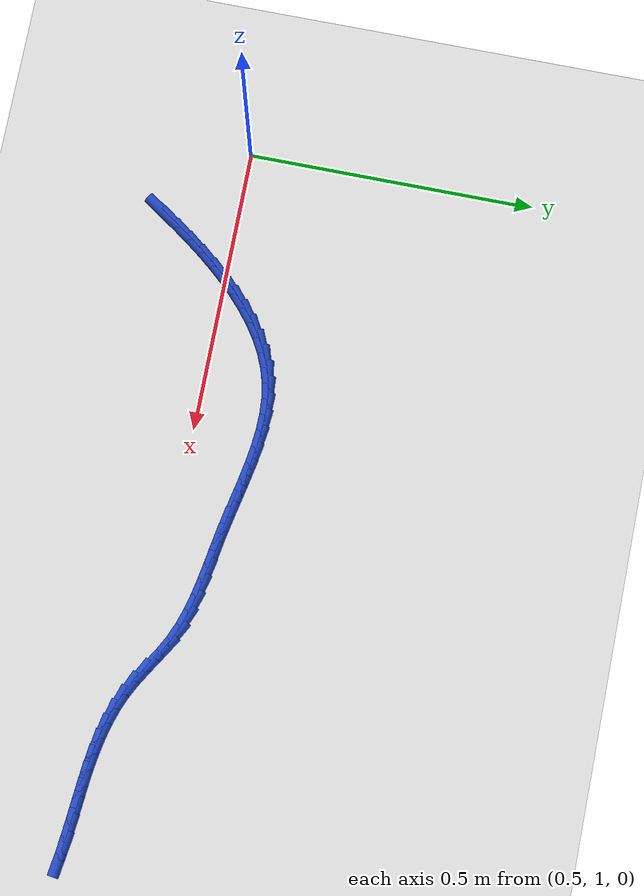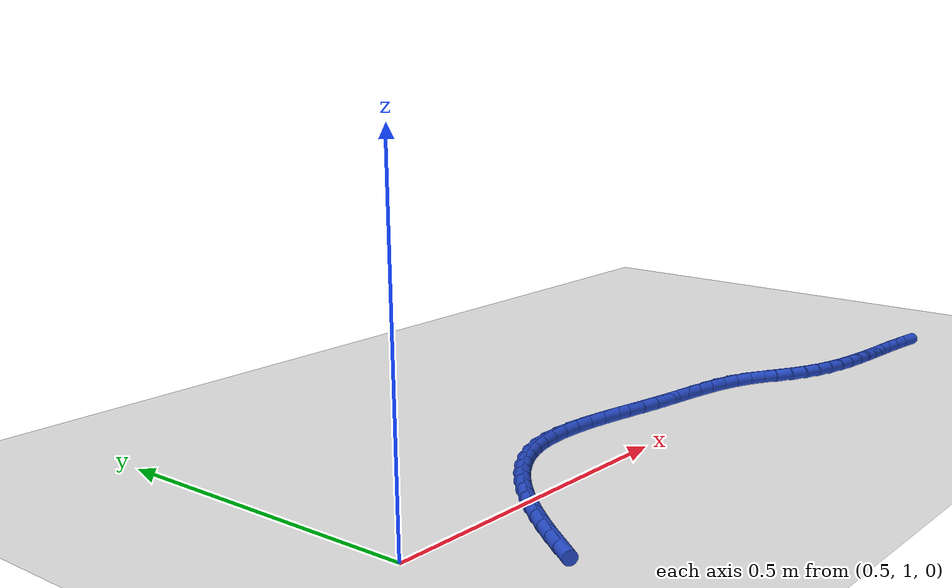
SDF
<sdf version="1.6">
 <world name="default">
  <model name="ground_plane">
   <static>1</static>
   <link name="link">
    <collision name="collision">
     <geometry><plane><normal>0 0 1</normal><size>100 100</size></plane></geometry>
     <surface><friction><ode><mu>100</mu><mu2>50</mu2></ode></friction></surface>
    </collision>
    <visual name="visual">
     <cast_shadows>0</cast_shadows>
     <geometry><plane><normal>0 0 1</normal><size>100 100</size></plane></geometry>
     <material>
      <script><uri>file://media/materials/scripts/gazebo.material</uri><name>Gazebo/WhiteGlow</name></script>
     </material>
    </visual>
   </link>
  </model>
  <model name="line">
   <link name="link_39">
    <pose>0.6345118933357509 0.8747605271081191 0.01 0 1.57 0.9742703240293497</pose>
    <collision name="collision">
     <geometry><cylinder><radius>0.01</radius><length>0.08</length></cylinder></geometry>
    </collision>
    <visual name="visual">
     <material>
      <script><name>Gazebo/Blue</name><uri>file://media/materials/scripts/gazebo.material</uri></script>
     </material>
     <geometry><cylinder><radius>0.01</radius><length>0.08</length></cylinder></geometry>
    </visual>
   </link>
   <link name="link_40">
    <pose>0.6522768348717717 0.9009220325243141 0.01 0 1.57 0.950379968052218</pose>
    <collision name="collision">
     <geometry><cylinder><radius>0.01</radius><length>0.08</length></cylinder></geometry>
    </collision>
    <visual name="visual">
     <material>
      <script><name>Gazebo/Blue</name><uri>file://media/materials/scripts/gazebo.material</uri></script>
     </material>
     <geometry><cylinder><radius>0.01</radius><length>0.08</length></cylinder></geometry>
    </visual>
   </link>
   <link name="link_41">
    <pose>0.6707701155462291 0.9268034929686579 0.01 0 1.57 0.9212251369995517</pose>
    <collision name="collision">
     <geometry><cylinder><radius>0.01</radius><length>0.08</length></cylinder></geometry>
    </collision>
    <visual name="visual">
     <material>
      <script><name>Gazebo/Blue</name><uri>file://media/materials/scripts/gazebo.material</uri></script>
     </material>
     <geometry><cylinder><radius>0.01</radius><length>0.08</length></cylinder></geometry>
    </visual>
   </link>
   <link name="link_42">
    <pose>0.6900045003930402 0.952127621854173 0.01 0 1.57 0.886257171846534</pose>
    <collision name="collision">
     <geometry><cylinder><radius>0.01</radius><length>0.08</length></cylinder></geometry>
    </collision>
    <visual name="visual">
     <material>
      <script><name>Gazebo/Blue</name><uri>file://media/materials/scripts/gazebo.material</uri></script>
     </material>
     <geometry><cylinder><radius>0.01</radius><length>0.08</length></cylinder></geometry>
    </visual>
   </link>
   <link name="link_43">
    <pose>0.709992754446123 0.9766171325938823 0.01 0 1.57 0.8447566182954042</pose>
    <collision name="collision">
     <geometry><cylinder><radius>0.01</radius><length>0.08</length></cylinder></geometry>
    </collision>
    <visual name="visual">
     <material>
      <script><name>Gazebo/Blue</name><uri>file://media/materials/scripts/gazebo.material</uri></script>
     </material>
     <geometry><cylinder><radius>0.01</radius><length>0.08</length></cylinder></geometry>
    </visual>
   </link>
   <link name="link_44">
    <pose>0.7307476427393947 0.9999947386008087 0.01 0 1.57 0.7958320431084995</pose>
    <collision name="collision">
     <geometry><cylinder><radius>0.01</radius><length>0.08</length></cylinder></geometry>
    </collision>
    <visual name="visual">
     <material>
      <script><name>Gazebo/Blue</name><uri>file://media/materials/scripts/gazebo.material</uri></script>
     </material>
     <geometry><cylinder><radius>0.01</radius><length>0.08</length></cylinder></geometry>
    </visual>
   </link>
   <link name="link_45">
    <pose>0.7522819303067732 1.0219831532879748 0.01 0 1.57 0.7384317700576108</pose>
    <collision name="collision">
     <geometry><cylinder><radius>0.01</radius><length>0.08</length></cylinder></geometry>
    </collision>
    <visual name="visual">
     <material>
      <script><name>Gazebo/Blue</name><uri>file://media/materials/scripts/gazebo.material</uri></script>
     </material>
     <geometry><cylinder><radius>0.01</radius><length>0.08</length></cylinder></geometry>
    </visual>
   </link>
   <link name="link_46">
    <pose>0.774608382182176 1.0423050900684043 0.01 0 1.57 0.6713859577516702</pose>
    <collision name="collision">
     <geometry><cylinder><radius>0.01</radius><length>0.08</length></cylinder></geometry>
    </collision>
    <visual name="visual">
     <material>
      <script><name>Gazebo/Blue</name><uri>file://media/materials/scripts/gazebo.material</uri></script>
     </material>
     <geometry><cylinder><radius>0.01</radius><length>0.08</length></cylinder></geometry>
    </visual>
   </link>
   <link name="link_47">
    <pose>0.7977397633995207 1.0606832623551194 0.01 0 1.57 0.5935056619220203</pose>
    <collision name="collision">
     <geometry><cylinder><radius>0.01</radius><length>0.08</length></cylinder></geometry>
    </collision>
    <visual name="visual">
     <material>
      <script><name>Gazebo/Blue</name><uri>file://media/materials/scripts/gazebo.material</uri></script>
     </material>
     <geometry><cylinder><radius>0.01</radius><length>0.08</length></cylinder></geometry>
    </visual>
   </link>
   <link name="link_48">
    <pose>0.8216888389927248 1.0768403835611435 0.01 0 1.57 0.5037734537976285</pose>
    <collision name="collision">
     <geometry><cylinder><radius>0.01</radius><length>0.08</length></cylinder></geometry>
    </collision>
    <visual name="visual">
     <material>
      <script><name>Gazebo/Blue</name><uri>file://media/materials/scripts/gazebo.material</uri></script>
     </material>
     <geometry><cylinder><radius>0.01</radius><length>0.08</length></cylinder></geometry>
    </visual>
   </link>
   <link name="link_49">
    <pose>0.8464683739957058 1.0904991670994986 0.01 0 1.57 0.40165531224368434</pose>
    <collision name="collision">
     <geometry><cylinder><radius>0.01</radius><length>0.08</length></cylinder></geometry>
    </collision>
    <visual name="visual">
     <material>
      <script><name>Gazebo/Blue</name><uri>file://media/materials/scripts/gazebo.material</uri></script>
     </material>
     <geometry><cylinder><radius>0.01</radius><length>0.08</length></cylinder></geometry>
    </visual>
   </link>
   <link name="link_50">
    <pose>0.8720911334423816 1.1013823263832083 0.01 0 1.57 0.28752393944200116</pose>
    <collision name="collision">
     <geometry><cylinder><radius>0.01</radius><length>0.08</length></cylinder></geometry>
    </collision>
    <visual name="visual">
     <material>
      <script><name>Gazebo/Blue</name><uri>file://media/materials/scripts/gazebo.material</uri></script>
     </material>
     <geometry><cylinder><radius>0.01</radius><length>0.08</length></cylinder></geometry>
    </visual>
   </link>
   <link name="link_51">
    <pose>0.8985698823666695 1.1092125748252952 0.01 0 1.57 0.16746332577175901</pose>
    <collision name="collision">
     <geometry><cylinder><radius>0.01</radius><length>0.08</length></cylinder></geometry>
    </collision>
    <visual name="visual">
     <material>
      <script><name>Gazebo/Blue</name><uri>file://media/materials/scripts/gazebo.material</uri></script>
     </material>
     <geometry><cylinder><radius>0.01</radius><length>0.08</length></cylinder></geometry>
    </visual>
   </link>
   <link name="link_52">
    <pose>0.9258967491045006 1.113832086909286 0.01 0 1.57 0.06163201362966509</pose>
    <collision name="collision">
     <geometry><cylinder><radius>0.01</radius><length>0.08</length></cylinder></geometry>
    </collision>
    <visual name="visual">
     <material>
      <script><name>Gazebo/Blue</name><uri>file://media/materials/scripts/gazebo.material</uri></script>
     </material>
     <geometry><cylinder><radius>0.01</radius><length>0.08</length></cylinder></geometry>
    </visual>
   </link>
   <link name="link_53">
    <pose>0.9539805787087852 1.1155651447771653 0.01 0 1.57 -0.02462243923433785</pose>
    <collision name="collision">
     <geometry><cylinder><radius>0.01</radius><length>0.08</length></cylinder></geometry>
    </collision>
    <visual name="visual">
     <material>
      <script><name>Gazebo/Blue</name><uri>file://media/materials/scripts/gazebo.material</uri></script>
     </material>
     <geometry><cylinder><radius>0.01</radius><length>0.08</length></cylinder></geometry>
    </visual>
   </link>
   <link name="link_54">
    <pose>0.9827092096491266 1.1148576328219746 0.01 0 1.57 -0.09208605516539609</pose>
    <collision name="collision">
     <geometry><cylinder><radius>0.01</radius><length>0.08</length></cylinder></geometry>
    </collision>
    <visual name="visual">
     <material>
      <script><name>Gazebo/Blue</name><uri>file://media/materials/scripts/gazebo.material</uri></script>
     </material>
     <geometry><cylinder><radius>0.01</radius><length>0.08</length></cylinder></geometry>
    </visual>
   </link>
   <link name="link_55">
    <pose>1.0119704803945873 1.1121554354398833 0.01 0 1.57 -0.1422519207330489</pose>
    <collision name="collision">
     <geometry><cylinder><radius>0.01</radius><length>0.08</length></cylinder></geometry>
    </collision>
    <visual name="visual">
     <material>
      <script><name>Gazebo/Blue</name><uri>file://media/materials/scripts/gazebo.material</uri></script>
     </material>
     <geometry><cylinder><radius>0.01</radius><length>0.08</length></cylinder></geometry>
    </visual>
   </link>
   <link name="link_56">
    <pose>1.04165222941423 1.1079044370270599 0.01 0 1.57 -0.1766618763921665</pose>
    <collision name="collision">
     <geometry><cylinder><radius>0.01</radius><length>0.08</length></cylinder></geometry>
    </collision>
    <visual name="visual">
     <material>
      <script><name>Gazebo/Blue</name><uri>file://media/materials/scripts/gazebo.material</uri></script>
     </material>
     <geometry><cylinder><radius>0.01</radius><length>0.08</length></cylinder></geometry>
    </visual>
   </link>
   <link name="link_57">
    <pose>1.0716422951771174 1.102550521979675 0.01 0 1.57 -0.19655776963537325</pose>
    <collision name="collision">
     <geometry><cylinder><radius>0.01</radius><length>0.08</length></cylinder></geometry>
    </collision>
    <visual name="visual">
     <material>
      <script><name>Gazebo/Blue</name><uri>file://media/materials/scripts/gazebo.material</uri></script>
     </material>
     <geometry><cylinder><radius>0.01</radius><length>0.08</length></cylinder></geometry>
    </visual>
   </link>
   <link name="link_58">
    <pose>1.101828516152312 1.0965395746938977 0.01 0 1.57 -0.2027280223977942</pose>
    <collision name="collision">
     <geometry><cylinder><radius>0.01</radius><length>0.08</length></cylinder></geometry>
    </collision>
    <visual name="visual">
     <material>
      <script><name>Gazebo/Blue</name><uri>file://media/materials/scripts/gazebo.material</uri></script>
     </material>
     <geometry><cylinder><radius>0.01</radius><length>0.08</length></cylinder></geometry>
    </visual>
   </link>
   <link name="link_59">
    <pose>1.1320987308088764 1.090317479565897 0.01 0 1.57 -0.1954537136168871</pose>
    <collision name="collision">
     <geometry><cylinder><radius>0.01</radius><length>0.08</length></cylinder></geometry>
    </collision>
    <visual name="visual">
     <material>
      <script><name>Gazebo/Blue</name><uri>file://media/materials/scripts/gazebo.material</uri></script>
     </material>
     <geometry><cylinder><radius>0.01</radius><length>0.08</length></cylinder></geometry>
    </visual>
   </link>
   <link name="link_60">
    <pose>1.1623407776158725 1.0843301209918426 0.01 0 1.57 -0.17618737623844744</pose>
    <collision name="collision">
     <geometry><cylinder><radius>0.01</radius><length>0.08</length></cylinder></geometry>
    </collision>
    <visual name="visual">
     <material>
      <script><name>Gazebo/Blue</name><uri>file://media/materials/scripts/gazebo.material</uri></script>
     </material>
     <geometry><cylinder><radius>0.01</radius><length>0.08</length></cylinder></geometry>
    </visual>
   </link>
   <link name="link_61">
    <pose>1.1924422514113204 1.0789710541708346 0.01 0 1.57 -0.16349710700885836</pose>
    <collision name="collision">
     <geometry><cylinder><radius>0.01</radius><length>0.08</length></cylinder></geometry>
    </collision>
    <visual name="visual">
     <material>
      <script><name>Gazebo/Blue</name><uri>file://media/materials/scripts/gazebo.material</uri></script>
     </material>
     <geometry><cylinder><radius>0.01</radius><length>0.08</length></cylinder></geometry>
    </visual>
   </link>
   <link name="link_62">
    <pose>1.2222880167843102 1.0740474076623578 0.01 0 1.57 -0.16967087327609182</pose>
    <collision name="collision">
     <geometry><cylinder><radius>0.01</radius><length>0.08</length></cylinder></geometry>
    </collision>
    <visual name="visual">
     <material>
      <script><name>Gazebo/Blue</name><uri>file://media/materials/scripts/gazebo.material</uri></script>
     </material>
     <geometry><cylinder><radius>0.01</radius><length>0.08</length></cylinder></geometry>
    </visual>
   </link>
   <link name="link_63">
    <pose>1.2517612241100597 1.068998116243236 0.01 0 1.57 -0.19556838650483138</pose>
    <collision name="collision">
     <geometry><cylinder><radius>0.01</radius><length>0.08</length></cylinder></geometry>
    </collision>
    <visual name="visual">
     <material>
      <script><name>Gazebo/Blue</name><uri>file://media/materials/scripts/gazebo.material</uri></script>
     </material>
     <geometry><cylinder><radius>0.01</radius><length>0.08</length></cylinder></geometry>
    </visual>
   </link>
   <link name="link_64">
    <pose>1.2807449972427511 1.0632564182711728 0.01 0 1.57 -0.24187523023586457</pose>
    <collision name="collision">
     <geometry><cylinder><radius>0.01</radius><length>0.08</length></cylinder></geometry>
    </collision>
    <visual name="visual">
     <material>
      <script><name>Gazebo/Blue</name><uri>file://media/materials/scripts/gazebo.material</uri></script>
     </material>
     <geometry><cylinder><radius>0.01</radius><length>0.08</length></cylinder></geometry>
    </visual>
   </link>
   <link name="link_65">
    <pose>1.3091224600365663 1.0562555521038728 0.01 0 1.57 -0.3089623519939928</pose>
    <collision name="collision">
     <geometry><cylinder><radius>0.01</radius><length>0.08</length></cylinder></geometry>
    </collision>
    <visual name="visual">
     <material>
      <script><name>Gazebo/Blue</name><uri>file://media/materials/scripts/gazebo.material</uri></script>
     </material>
     <geometry><cylinder><radius>0.01</radius><length>0.08</length></cylinder></geometry>
    </visual>
   </link>
   <link name="link_66">
    <pose>1.3367767363456868 1.04742875609904 0.01 0 1.57 -0.3962804784293602</pose>
    <collision name="collision">
     <geometry><cylinder><radius>0.01</radius><length>0.08</length></cylinder></geometry>
    </collision>
    <visual name="visual">
     <material>
      <script><name>Gazebo/Blue</name><uri>file://media/materials/scripts/gazebo.material</uri></script>
     </material>
     <geometry><cylinder><radius>0.01</radius><length>0.08</length></cylinder></geometry>
    </visual>
   </link>
   <link name="link_67">
    <pose>1.3635909500242955 1.0362092686143791 0.01 0 1.57 -0.4950699353983255</pose>
    <collision name="collision">
     <geometry><cylinder><radius>0.01</radius><length>0.08</length></cylinder></geometry>
    </collision>
    <visual name="visual">
     <material>
      <script><name>Gazebo/Blue</name><uri>file://media/materials/scripts/gazebo.material</uri></script>
     </material>
     <geometry><cylinder><radius>0.01</radius><length>0.08</length></cylinder></geometry>
    </visual>
   </link>
   <link name="link_68">
    <pose>1.3894941552856221 1.0222236564414506 0.01 0 1.57 -0.5523056421877995</pose>
    <collision name="collision">
     <geometry><cylinder><radius>0.01</radius><length>0.08</length></cylinder></geometry>
    </collision>
    <visual name="visual">
     <material>
      <script><name>Gazebo/Blue</name><uri>file://media/materials/scripts/gazebo.material</uri></script>
     </material>
     <geometry><cylinder><radius>0.01</radius><length>0.08</length></cylinder></geometry>
    </visual>
   </link>
   <link name="link_69">
    <pose>1.4147815176828242 1.0066395092035652 0.01 0 1.57 -0.5460396533047007</pose>
    <collision name="collision">
     <geometry><cylinder><radius>0.01</radius><length>0.08</length></cylinder></geometry>
    </collision>
    <visual name="visual">
     <material>
      <script><name>Gazebo/Blue</name><uri>file://media/materials/scripts/gazebo.material</uri></script>
     </material>
     <geometry><cylinder><radius>0.01</radius><length>0.08</length></cylinder></geometry>
    </visual>
   </link>
   <link name="link_70">
    <pose>1.4399233392597741 0.9913615948122588 0.01 0 1.57 -0.47816405174187276</pose>
    <collision name="collision">
     <geometry><cylinder><radius>0.01</radius><length>0.08</length></cylinder></geometry>
    </collision>
    <visual name="visual">
     <material>
      <script><name>Gazebo/Blue</name><uri>file://media/materials/scripts/gazebo.material</uri></script>
     </material>
     <geometry><cylinder><radius>0.01</radius><length>0.08</length></cylinder></geometry>
    </visual>
   </link>
   <link name="link_71">
    <pose>1.465365159999205 0.9781756203190277 0.01 0 1.57 -0.3893617521029416</pose>
    <collision name="collision">
     <geometry><cylinder><radius>0.01</radius><length>0.08</length></cylinder></geometry>
    </collision>
    <visual name="visual">
     <material>
      <script><name>Gazebo/Blue</name><uri>file://media/materials/scripts/gazebo.material</uri></script>
     </material>
     <geometry><cylinder><radius>0.01</radius><length>0.08</length></cylinder></geometry>
    </visual>
   </link>
   <link name="link_72">
    <pose>1.4912758920154996 0.967544213243497 0.01 0 1.57 -0.30882810315336956</pose>
    <collision name="collision">
     <geometry><cylinder><radius>0.01</radius><length>0.08</length></cylinder></geometry>
    </collision>
    <visual name="visual">
     <material>
      <script><name>Gazebo/Blue</name><uri>file://media/materials/scripts/gazebo.material</uri></script>
     </material>
     <geometry><cylinder><radius>0.01</radius><length>0.08</length></cylinder></geometry>
    </visual>
   </link>
   <link name="link_73">
    <pose>1.517656720691931 0.9591277832875401 0.01 0 1.57 -0.2393567938559261</pose>
    <collision name="collision">
     <geometry><cylinder><radius>0.01</radius><length>0.08</length></cylinder></geometry>
    </collision>
    <visual name="visual">
     <material>
      <script><name>Gazebo/Blue</name><uri>file://media/materials/scripts/gazebo.material</uri></script>
     </material>
     <geometry><cylinder><radius>0.01</radius><length>0.08</length></cylinder></geometry>
    </visual>
   </link>
   <link name="link_74">
    <pose>1.5445064812703178 0.9525754996945924 0.01 0 1.57 -0.18240876522944843</pose>
    <collision name="collision">
     <geometry><cylinder><radius>0.01</radius><length>0.08</length></cylinder></geometry>
    </collision>
    <visual name="visual">
     <material>
      <script><name>Gazebo/Blue</name><uri>file://media/materials/scripts/gazebo.material</uri></script>
     </material>
     <geometry><cylinder><radius>0.01</radius><length>0.08</length></cylinder></geometry>
    </visual>
   </link>
   <link name="link_75">
    <pose>1.5718240089924778 0.9475365317080886 0.01 0 1.57 -0.1386265958529148</pose>
    <collision name="collision">
     <geometry><cylinder><radius>0.01</radius><length>0.08</length></cylinder></geometry>
    </collision>
    <visual name="visual">
     <material>
      <script><name>Gazebo/Blue</name><uri>file://media/materials/scripts/gazebo.material</uri></script>
     </material>
     <geometry><cylinder><radius>0.01</radius><length>0.08</length></cylinder></geometry>
    </visual>
   </link>
   <link name="link_76">
    <pose>1.5996081391002288 0.943660048571464 0.01 0 1.57 -0.10806850550997768</pose>
    <collision name="collision">
     <geometry><cylinder><radius>0.01</radius><length>0.08</length></cylinder></geometry>
    </collision>
    <visual name="visual">
     <material>
      <script><name>Gazebo/Blue</name><uri>file://media/materials/scripts/gazebo.material</uri></script>
     </material>
     <geometry><cylinder><radius>0.01</radius><length>0.08</length></cylinder></geometry>
    </visual>
   </link>
   <link name="link_77">
    <pose>1.6278577068353892 0.9405952195281535 0.01 0 1.57 -0.0904407744322594</pose>
    <collision name="collision">
     <geometry><cylinder><radius>0.01</radius><length>0.08</length></cylinder></geometry>
    </collision>
    <visual name="visual">
     <material>
      <script><name>Gazebo/Blue</name><uri>file://media/materials/scripts/gazebo.material</uri></script>
     </material>
     <geometry><cylinder><radius>0.01</radius><length>0.08</length></cylinder></geometry>
    </visual>
   </link>
   <link name="link_78">
    <pose>1.6565715474397762 0.9379912138215921 0.01 0 1.57 -0.08527160795471617</pose>
    <collision name="collision">
     <geometry><cylinder><radius>0.01</radius><length>0.08</length></cylinder></geometry>
    </collision>
    <visual name="visual">
     <material>
      <script><name>Gazebo/Blue</name><uri>file://media/materials/scripts/gazebo.material</uri></script>
     </material>
     <geometry><cylinder><radius>0.01</radius><length>0.08</length></cylinder></geometry>
    </visual>
   </link>
   <link name="link_79">
    <pose>1.6857484961552085 0.9354972006952151 0.01 0 1.57 -0.09201184117800526</pose>
    <collision name="collision">
     <geometry><cylinder><radius>0.01</radius><length>0.08</length></cylinder></geometry>
    </collision>
    <visual name="visual">
     <material>
      <script><name>Gazebo/Blue</name><uri>file://media/materials/scripts/gazebo.material</uri></script>
     </material>
     <geometry><cylinder><radius>0.01</radius><length>0.08</length></cylinder></geometry>
    </visual>
   </link>
   <link name="link_80">
    <pose>1.7153873882235033 0.9327623493924573 0.01 0 1.57 -0.11007015080918944</pose>
    <collision name="collision">
     <geometry><cylinder><radius>0.01</radius><length>0.08</length></cylinder></geometry>
    </collision>
    <visual name="visual">
     <material>
      <script><name>Gazebo/Blue</name><uri>file://media/materials/scripts/gazebo.material</uri></script>
     </material>
     <geometry><cylinder><radius>0.01</radius><length>0.08</length></cylinder></geometry>
    </visual>
   </link>
   <link name="link_81">
    <pose>1.7454870588864793 0.9294358291567539 0.01 0 1.57 -0.1387980976544237</pose>
    <collision name="collision">
     <geometry><cylinder><radius>0.01</radius><length>0.08</length></cylinder></geometry>
    </collision>
    <visual name="visual">
     <material>
      <script><name>Gazebo/Blue</name><uri>file://media/materials/scripts/gazebo.material</uri></script>
     </material>
     <geometry><cylinder><radius>0.01</radius><length>0.08</length></cylinder></geometry>
    </visual>
   </link>
  </model>
 </world>
</sdf>
